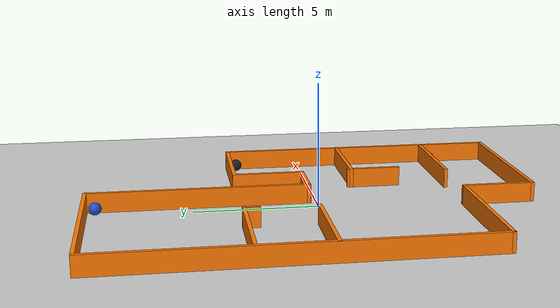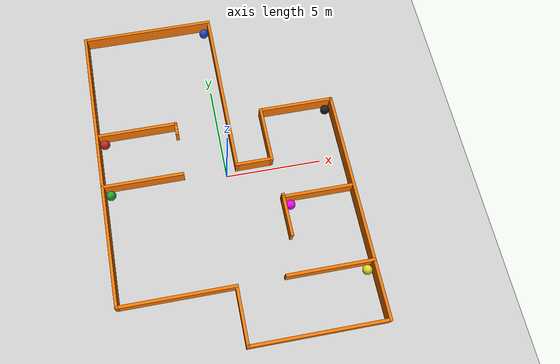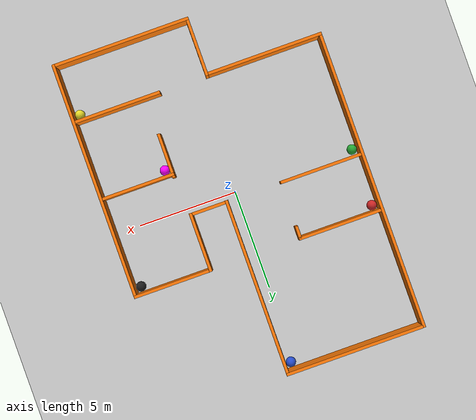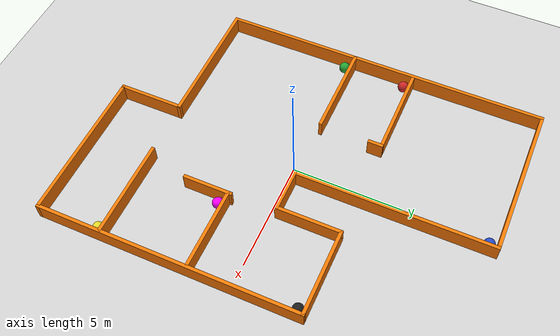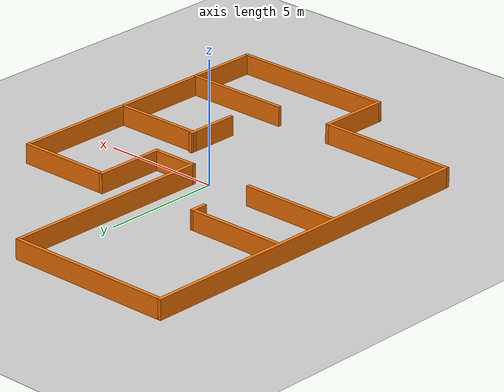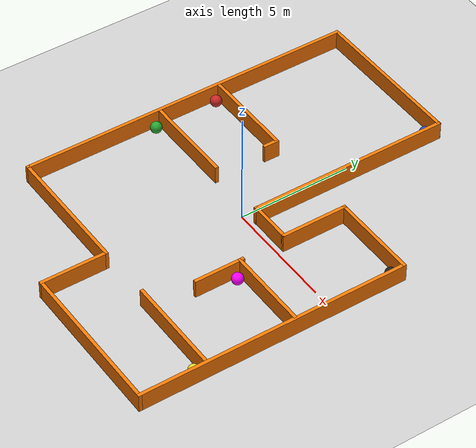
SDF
<sdf version="1.7">
 <world name="default">
  <light name="sun" type="directional">
   <pose>0 0 10 0 -0 0</pose>
   <diffuse>0.8 0.8 0.8 1</diffuse>
   <specular>0.2 0.2 0.2 1</specular>
   <attenuation>
    <range>1000</range>
    <constant>0.9</constant>
    <linear>0.01</linear>
    <quadratic>0.001</quadratic>
   </attenuation>
   <direction>-0.5 0.1 -0.9</direction>
   <spot><inner_angle>0</inner_angle><outer_angle>0</outer_angle><falloff>0</falloff></spot>
  </light>
  <model name="ground_plane">
   <static>1</static>
   <link name="link">
    <collision name="collision">
     <geometry><plane><normal>0 0 1</normal><size>100 100</size></plane></geometry>
     <surface>
      <contact><collide_bitmask>65535</collide_bitmask></contact>
      <friction><ode><mu>100</mu><mu2>50</mu2></ode></friction>
     </surface>
    </collision>
    <visual name="visual">
     <cast_shadows>0</cast_shadows>
     <geometry><plane><normal>0 0 1</normal><size>100 100</size></plane></geometry>
     <material>
      <script><uri>file://media/materials/scripts/gazebo.material</uri><name>Gazebo/Grey</name></script>
     </material>
    </visual>
   </link>
  </model>
  <gravity>0 0 -9.8</gravity>
  <magnetic_field>6e-06 2.3e-05 -4.2e-05</magnetic_field>
  <atmosphere type="adiabatic"/>
  <physics name="default_physics" default="0" type="ode">
   <max_step_size>0.001</max_step_size>
   <real_time_factor>1</real_time_factor>
   <real_time_update_rate>1000</real_time_update_rate>
  </physics>
  <scene><ambient>0.4 0.4 0.4 1</ambient><background>0.7 0.7 0.7 1</background><shadows>1</shadows></scene>
  <spherical_coordinates>
   <surface_model>EARTH_WGS84</surface_model>
   <latitude_deg>0</latitude_deg>
   <longitude_deg>0</longitude_deg>
   <elevation>0</elevation>
   <heading_deg>0</heading_deg>
  </spherical_coordinates>
  <model name="house_1">
   <link name="Wall_43">
    <pose>-2.787 8.425 0 0 -0 0</pose>
    <inertial>
     <mass>1</mass>
     <inertia><ixx>1</ixx><ixy>0</ixy><ixz>0</ixz><iyy>1</iyy><iyz>0</iyz><izz>1</izz></inertia>
    </inertial>
    <visual name="Wall_43_Visual">
     <pose>0 0 0.4 0 -0 0</pose>
     <geometry><box><size>7 0.15 0.8</size></box></geometry>
     <material>
      <script><uri>file://media/materials/scripts/gazebo.material</uri><name>Gazebo/Grey</name></script>
      <ambient>0.996 0.475 0.02 1</ambient>
      <shader type="pixel"><normal_map>__default__</normal_map></shader>
      <diffuse>0.7 0.7 0.7 1</diffuse>
      <specular>0.01 0.01 0.01 1</specular>
      <emissive>0 0 0 1</emissive>
     </material>
     <meta><layer>0</layer></meta>
    </visual>
    <collision name="Wall_43_Collision">
     <pose>0 0 0.4 0 -0 0</pose>
     <geometry><box><size>7 0.15 0.8</size></box></geometry>
     <surface>
      <friction>
       <ode><mu>1</mu><mu2>1</mu2><fdir1>0 0 0</fdir1><slip1>0</slip1><slip2>0</slip2></ode>
       <torsional>
        <coefficient>1</coefficient>
        <patch_radius>0</patch_radius>
        <surface_radius>0</surface_radius>
        <use_patch_radius>1</use_patch_radius>
        <ode><slip>0</slip></ode>
       </torsional>
      </friction>
      <bounce><restitution_coefficient>0</restitution_coefficient><threshold>1e+06</threshold></bounce>
      <contact>
       <collide_without_contact>0</collide_without_contact>
       <collide_without_contact_bitmask>1</collide_without_contact_bitmask>
       <collide_bitmask>1</collide_bitmask>
       <ode>
        <soft_cfm>0</soft_cfm>
        <soft_erp>0.2</soft_erp>
        <kp>1e+13</kp>
        <kd>1</kd>
        <max_vel>0.01</max_vel>
        <min_depth>0</min_depth>
       </ode>
       <bullet>
        <split_impulse>1</split_impulse>
        <split_impulse_penetration_threshold>-0.01</split_impulse_penetration_threshold>
        <soft_cfm>0</soft_cfm>
        <soft_erp>0.2</soft_erp>
        <kp>1e+13</kp>
        <kd>1</kd>
       </bullet>
      </contact>
     </surface>
    </collision>
   </link>
   <link name="Wall_44">
    <pose>0.642 3.99 0 0 0 -1.5708</pose>
    <inertial>
     <mass>1</mass>
     <inertia><ixx>1</ixx><ixy>0</ixy><ixz>0</ixz><iyy>1</iyy><iyz>0</iyz><izz>1</izz></inertia>
    </inertial>
    <visual name="Wall_44_Visual">
     <pose>0 0 0.4 0 -0 0</pose>
     <geometry><box><size>9 0.15 0.8</size></box></geometry>
     <material>
      <script><uri>file://media/materials/scripts/gazebo.material</uri><name>Gazebo/Grey</name></script>
      <ambient>0.996 0.475 0.02 1</ambient>
      <shader type="pixel"><normal_map>__default__</normal_map></shader>
      <diffuse>0.7 0.7 0.7 1</diffuse>
      <specular>0.01 0.01 0.01 1</specular>
      <emissive>0 0 0 1</emissive>
     </material>
     <meta><layer>0</layer></meta>
    </visual>
    <collision name="Wall_44_Collision">
     <pose>0 0 0.4 0 -0 0</pose>
     <geometry><box><size>9 0.15 0.8</size></box></geometry>
     <surface>
      <friction>
       <ode><mu>1</mu><mu2>1</mu2><fdir1>0 0 0</fdir1><slip1>0</slip1><slip2>0</slip2></ode>
       <torsional>
        <coefficient>1</coefficient>
        <patch_radius>0</patch_radius>
        <surface_radius>0</surface_radius>
        <use_patch_radius>1</use_patch_radius>
        <ode><slip>0</slip></ode>
       </torsional>
      </friction>
      <bounce><restitution_coefficient>0</restitution_coefficient><threshold>1e+06</threshold></bounce>
      <contact>
       <collide_without_contact>0</collide_without_contact>
       <collide_without_contact_bitmask>1</collide_without_contact_bitmask>
       <collide_bitmask>1</collide_bitmask>
       <ode>
        <soft_cfm>0</soft_cfm>
        <soft_erp>0.2</soft_erp>
        <kp>1e+13</kp>
        <kd>1</kd>
        <max_vel>0.01</max_vel>
        <min_depth>0</min_depth>
       </ode>
       <bullet>
        <split_impulse>1</split_impulse>
        <split_impulse_penetration_threshold>-0.01</split_impulse_penetration_threshold>
        <soft_cfm>0</soft_cfm>
        <soft_erp>0.2</soft_erp>
        <kp>1e+13</kp>
        <kd>1</kd>
       </bullet>
      </contact>
     </surface>
    </collision>
   </link>
   <link name="Wall_45">
    <pose>1.563 -0.425 0 0 -0 0</pose>
    <inertial>
     <mass>1</mass>
     <inertia><ixx>1</ixx><ixy>0</ixy><ixz>0</ixz><iyy>1</iyy><iyz>0</iyz><izz>1</izz></inertia>
    </inertial>
    <visual name="Wall_45_Visual">
     <pose>0 0 0.4 0 -0 0</pose>
     <geometry><box><size>2 0.15 0.8</size></box></geometry>
     <material>
      <script><uri>file://media/materials/scripts/gazebo.material</uri><name>Gazebo/Grey</name></script>
      <ambient>0.996 0.475 0.02 1</ambient>
      <shader type="pixel"><normal_map>__default__</normal_map></shader>
      <diffuse>0.7 0.7 0.7 1</diffuse>
      <specular>0.01 0.01 0.01 1</specular>
      <emissive>0 0 0 1</emissive>
     </material>
     <meta><layer>0</layer></meta>
    </visual>
    <collision name="Wall_45_Collision">
     <pose>0 0 0.4 0 -0 0</pose>
     <geometry><box><size>2 0.15 0.8</size></box></geometry>
     <surface>
      <friction>
       <ode><mu>1</mu><mu2>1</mu2><fdir1>0 0 0</fdir1><slip1>0</slip1><slip2>0</slip2></ode>
       <torsional>
        <coefficient>1</coefficient>
        <patch_radius>0</patch_radius>
        <surface_radius>0</surface_radius>
        <use_patch_radius>1</use_patch_radius>
        <ode><slip>0</slip></ode>
       </torsional>
      </friction>
      <bounce><restitution_coefficient>0</restitution_coefficient><threshold>1e+06</threshold></bounce>
      <contact>
       <collide_without_contact>0</collide_without_contact>
       <collide_without_contact_bitmask>1</collide_without_contact_bitmask>
       <collide_bitmask>1</collide_bitmask>
       <ode>
        <soft_cfm>0</soft_cfm>
        <soft_erp>0.2</soft_erp>
        <kp>1e+13</kp>
        <kd>1</kd>
        <max_vel>0.01</max_vel>
        <min_depth>0</min_depth>
       </ode>
       <bullet>
        <split_impulse>1</split_impulse>
        <split_impulse_penetration_threshold>-0.01</split_impulse_penetration_threshold>
        <soft_cfm>0</soft_cfm>
        <soft_erp>0.2</soft_erp>
        <kp>1e+13</kp>
        <kd>1</kd>
       </bullet>
      </contact>
     </surface>
    </collision>
   </link>
   <link name="Wall_46">
    <pose>2.488 1 0 0 -0 1.5708</pose>
    <inertial>
     <mass>1</mass>
     <inertia><ixx>1</ixx><ixy>0</ixy><ixz>0</ixz><iyy>1</iyy><iyz>0</iyz><izz>1</izz></inertia>
    </inertial>
    <visual name="Wall_46_Visual">
     <pose>0 0 0.4 0 -0 0</pose>
     <geometry><box><size>3 0.15 0.8</size></box></geometry>
     <material>
      <script><uri>file://media/materials/scripts/gazebo.material</uri><name>Gazebo/Grey</name></script>
      <ambient>0.996 0.475 0.02 1</ambient>
      <shader type="pixel"><normal_map>__default__</normal_map></shader>
      <diffuse>0.7 0.7 0.7 1</diffuse>
      <specular>0.01 0.01 0.01 1</specular>
      <emissive>0 0 0 1</emissive>
     </material>
     <meta><layer>0</layer></meta>
    </visual>
    <collision name="Wall_46_Collision">
     <pose>0 0 0.4 0 -0 0</pose>
     <geometry><box><size>3 0.15 0.8</size></box></geometry>
     <surface>
      <friction>
       <ode><mu>1</mu><mu2>1</mu2><fdir1>0 0 0</fdir1><slip1>0</slip1><slip2>0</slip2></ode>
       <torsional>
        <coefficient>1</coefficient>
        <patch_radius>0</patch_radius>
        <surface_radius>0</surface_radius>
        <use_patch_radius>1</use_patch_radius>
        <ode><slip>0</slip></ode>
       </torsional>
      </friction>
      <bounce><restitution_coefficient>0</restitution_coefficient><threshold>1e+06</threshold></bounce>
      <contact>
       <collide_without_contact>0</collide_without_contact>
       <collide_without_contact_bitmask>1</collide_without_contact_bitmask>
       <collide_bitmask>1</collide_bitmask>
       <ode>
        <soft_cfm>0</soft_cfm>
        <soft_erp>0.2</soft_erp>
        <kp>1e+13</kp>
        <kd>1</kd>
        <max_vel>0.01</max_vel>
        <min_depth>0</min_depth>
       </ode>
       <bullet>
        <split_impulse>1</split_impulse>
        <split_impulse_penetration_threshold>-0.01</split_impulse_penetration_threshold>
        <soft_cfm>0</soft_cfm>
        <soft_erp>0.2</soft_erp>
        <kp>1e+13</kp>
        <kd>1</kd>
       </bullet>
      </contact>
     </surface>
    </collision>
   </link>
   <link name="Wall_47">
    <pose>4.413 2.425 0 0 -0 0</pose>
    <visual name="Wall_47_Visual">
     <pose>0 0 0.4 0 -0 0</pose>
     <geometry><box><size>4 0.15 0.8</size></box></geometry>
     <material>
      <script><uri>file://media/materials/scripts/gazebo.material</uri><name>Gazebo/Grey</name></script>
      <ambient>0.996078 0.47451 0.0196078 1</ambient>
      <shader type="pixel"/>
      <diffuse>0.7 0.7 0.7 1</diffuse>
      <specular>0.01 0.01 0.01 1</specular>
      <emissive>0 0 0 1</emissive>
     </material>
     <meta><layer>0</layer></meta>
    </visual>
    <collision name="Wall_47_Collision">
     <pose>0 0 0.4 0 -0 0</pose>
     <geometry><box><size>4 0.15 0.8</size></box></geometry>
     <surface>
      <friction>
       <ode><mu>1</mu><mu2>1</mu2><fdir1>0 0 0</fdir1><slip1>0</slip1><slip2>0</slip2></ode>
       <torsional>
        <coefficient>1</coefficient>
        <patch_radius>0</patch_radius>
        <surface_radius>0</surface_radius>
        <use_patch_radius>1</use_patch_radius>
        <ode><slip>0</slip></ode>
       </torsional>
      </friction>
      <bounce><restitution_coefficient>0</restitution_coefficient><threshold>1e+06</threshold></bounce>
      <contact>
       <collide_without_contact>0</collide_without_contact>
       <collide_without_contact_bitmask>1</collide_without_contact_bitmask>
       <collide_bitmask>1</collide_bitmask>
       <ode>
        <soft_cfm>0</soft_cfm>
        <soft_erp>0.2</soft_erp>
        <kp>1e+13</kp>
        <kd>1</kd>
        <max_vel>0.01</max_vel>
        <min_depth>0</min_depth>
       </ode>
       <bullet>
        <split_impulse>1</split_impulse>
        <split_impulse_penetration_threshold>-0.01</split_impulse_penetration_threshold>
        <soft_cfm>0</soft_cfm>
        <soft_erp>0.2</soft_erp>
        <kp>1e+13</kp>
        <kd>1</kd>
       </bullet>
      </contact>
     </surface>
    </collision>
   </link>
   <link name="Wall_48">
    <pose>6.338 -3.5 0 0 0 -1.5708</pose>
    <inertial>
     <mass>1</mass>
     <inertia><ixx>1</ixx><ixy>0</ixy><ixz>0</ixz><iyy>1</iyy><iyz>0</iyz><izz>1</izz></inertia>
    </inertial>
    <visual name="Wall_48_Visual">
     <pose>0 0 0.4 0 -0 0</pose>
     <geometry><box><size>12 0.15 0.8</size></box></geometry>
     <material>
      <script><uri>file://media/materials/scripts/gazebo.material</uri><name>Gazebo/Grey</name></script>
      <ambient>0.996 0.475 0.02 1</ambient>
      <shader type="pixel"><normal_map>__default__</normal_map></shader>
      <diffuse>0.7 0.7 0.7 1</diffuse>
      <specular>0.01 0.01 0.01 1</specular>
      <emissive>0 0 0 1</emissive>
     </material>
     <meta><layer>0</layer></meta>
    </visual>
    <collision name="Wall_48_Collision">
     <pose>0 0 0.4 0 -0 0</pose>
     <geometry><box><size>12 0.15 0.8</size></box></geometry>
     <surface>
      <friction>
       <ode><mu>1</mu><mu2>1</mu2><fdir1>0 0 0</fdir1><slip1>0</slip1><slip2>0</slip2></ode>
       <torsional>
        <coefficient>1</coefficient>
        <patch_radius>0</patch_radius>
        <surface_radius>0</surface_radius>
        <use_patch_radius>1</use_patch_radius>
        <ode><slip>0</slip></ode>
       </torsional>
      </friction>
      <bounce><restitution_coefficient>0</restitution_coefficient><threshold>1e+06</threshold></bounce>
      <contact>
       <collide_without_contact>0</collide_without_contact>
       <collide_without_contact_bitmask>1</collide_without_contact_bitmask>
       <collide_bitmask>1</collide_bitmask>
       <ode>
        <soft_cfm>0</soft_cfm>
        <soft_erp>0.2</soft_erp>
        <kp>1e+13</kp>
        <kd>1</kd>
        <max_vel>0.01</max_vel>
        <min_depth>0</min_depth>
       </ode>
       <bullet>
        <split_impulse>1</split_impulse>
        <split_impulse_penetration_threshold>-0.01</split_impulse_penetration_threshold>
        <soft_cfm>0</soft_cfm>
        <soft_erp>0.2</soft_erp>
        <kp>1e+13</kp>
        <kd>1</kd>
       </bullet>
      </contact>
     </surface>
    </collision>
   </link>
   <link name="Wall_49">
    <pose>2.913 -9.425 0 0 -0 3.14159</pose>
    <inertial>
     <mass>1</mass>
     <inertia><ixx>1</ixx><ixy>0</ixy><ixz>0</ixz><iyy>1</iyy><iyz>0</iyz><izz>1</izz></inertia>
    </inertial>
    <visual name="Wall_49_Visual">
     <pose>0 0 0.4 0 -0 0</pose>
     <geometry><box><size>7 0.15 0.8</size></box></geometry>
     <material>
      <script><uri>file://media/materials/scripts/gazebo.material</uri><name>Gazebo/Grey</name></script>
      <ambient>0.996 0.475 0.02 1</ambient>
      <shader type="pixel"><normal_map>__default__</normal_map></shader>
      <diffuse>0.7 0.7 0.7 1</diffuse>
      <specular>0.01 0.01 0.01 1</specular>
      <emissive>0 0 0 1</emissive>
     </material>
     <meta><layer>0</layer></meta>
    </visual>
    <collision name="Wall_49_Collision">
     <pose>0 0 0.4 0 -0 0</pose>
     <geometry><box><size>7 0.15 0.8</size></box></geometry>
     <surface>
      <friction>
       <ode><mu>1</mu><mu2>1</mu2><fdir1>0 0 0</fdir1><slip1>0</slip1><slip2>0</slip2></ode>
       <torsional>
        <coefficient>1</coefficient>
        <patch_radius>0</patch_radius>
        <surface_radius>0</surface_radius>
        <use_patch_radius>1</use_patch_radius>
        <ode><slip>0</slip></ode>
       </torsional>
      </friction>
      <bounce><restitution_coefficient>0</restitution_coefficient><threshold>1e+06</threshold></bounce>
      <contact>
       <collide_without_contact>0</collide_without_contact>
       <collide_without_contact_bitmask>1</collide_without_contact_bitmask>
       <collide_bitmask>1</collide_bitmask>
       <ode>
        <soft_cfm>0</soft_cfm>
        <soft_erp>0.2</soft_erp>
        <kp>1e+13</kp>
        <kd>1</kd>
        <max_vel>0.01</max_vel>
        <min_depth>0</min_depth>
       </ode>
       <bullet>
        <split_impulse>1</split_impulse>
        <split_impulse_penetration_threshold>-0.01</split_impulse_penetration_threshold>
        <soft_cfm>0</soft_cfm>
        <soft_erp>0.2</soft_erp>
        <kp>1e+13</kp>
        <kd>1</kd>
       </bullet>
      </contact>
     </surface>
    </collision>
   </link>
   <link name="Wall_50">
    <pose>-0.512 -8 0 0 -0 1.5708</pose>
    <inertial>
     <mass>1</mass>
     <inertia><ixx>1</ixx><ixy>0</ixy><ixz>0</ixz><iyy>1</iyy><iyz>0</iyz><izz>1</izz></inertia>
    </inertial>
    <visual name="Wall_50_Visual">
     <pose>0 0 0.4 0 -0 0</pose>
     <geometry><box><size>3 0.15 0.8</size></box></geometry>
     <material>
      <script><uri>file://media/materials/scripts/gazebo.material</uri><name>Gazebo/Grey</name></script>
      <ambient>0.996 0.475 0.02 1</ambient>
      <shader type="pixel"><normal_map>__default__</normal_map></shader>
      <diffuse>0.7 0.7 0.7 1</diffuse>
      <specular>0.01 0.01 0.01 1</specular>
      <emissive>0 0 0 1</emissive>
     </material>
     <meta><layer>0</layer></meta>
    </visual>
    <collision name="Wall_50_Collision">
     <pose>0 0 0.4 0 -0 0</pose>
     <geometry><box><size>3 0.15 0.8</size></box></geometry>
     <surface>
      <friction>
       <ode><mu>1</mu><mu2>1</mu2><fdir1>0 0 0</fdir1><slip1>0</slip1><slip2>0</slip2></ode>
       <torsional>
        <coefficient>1</coefficient>
        <patch_radius>0</patch_radius>
        <surface_radius>0</surface_radius>
        <use_patch_radius>1</use_patch_radius>
        <ode><slip>0</slip></ode>
       </torsional>
      </friction>
      <bounce><restitution_coefficient>0</restitution_coefficient><threshold>1e+06</threshold></bounce>
      <contact>
       <collide_without_contact>0</collide_without_contact>
       <collide_without_contact_bitmask>1</collide_without_contact_bitmask>
       <collide_bitmask>1</collide_bitmask>
       <ode>
        <soft_cfm>0</soft_cfm>
        <soft_erp>0.2</soft_erp>
        <kp>1e+13</kp>
        <kd>1</kd>
        <max_vel>0.01</max_vel>
        <min_depth>0</min_depth>
       </ode>
       <bullet>
        <split_impulse>1</split_impulse>
        <split_impulse_penetration_threshold>-0.01</split_impulse_penetration_threshold>
        <soft_cfm>0</soft_cfm>
        <soft_erp>0.2</soft_erp>
        <kp>1e+13</kp>
        <kd>1</kd>
       </bullet>
      </contact>
     </surface>
    </collision>
   </link>
   <link name="Wall_51">
    <pose>-3.425 -6.575 0 0 -0 3.14159</pose>
    <visual name="Wall_51_Visual">
     <pose>0 0 0.4 0 -0 0</pose>
     <geometry><box><size>5.976 0.15 0.8</size></box></geometry>
     <material>
      <script><uri>file://media/materials/scripts/gazebo.material</uri><name>Gazebo/Grey</name></script>
      <ambient>0.996078 0.47451 0.0196078 1</ambient>
      <shader type="pixel"/>
      <diffuse>0.7 0.7 0.7 1</diffuse>
      <specular>0.01 0.01 0.01 1</specular>
      <emissive>0 0 0 1</emissive>
     </material>
     <meta><layer>0</layer></meta>
    </visual>
    <collision name="Wall_51_Collision">
     <pose>0 0 0.4 0 -0 0</pose>
     <geometry><box><size>5.976 0.15 0.8</size></box></geometry>
     <surface>
      <friction>
       <ode><mu>1</mu><mu2>1</mu2><fdir1>0 0 0</fdir1><slip1>0</slip1><slip2>0</slip2></ode>
       <torsional>
        <coefficient>1</coefficient>
        <patch_radius>0</patch_radius>
        <surface_radius>0</surface_radius>
        <use_patch_radius>1</use_patch_radius>
        <ode><slip>0</slip></ode>
       </torsional>
      </friction>
      <bounce><restitution_coefficient>0</restitution_coefficient><threshold>1e+06</threshold></bounce>
      <contact>
       <collide_without_contact>0</collide_without_contact>
       <collide_without_contact_bitmask>1</collide_without_contact_bitmask>
       <collide_bitmask>1</collide_bitmask>
       <ode>
        <soft_cfm>0</soft_cfm>
        <soft_erp>0.2</soft_erp>
        <kp>1e+13</kp>
        <kd>1</kd>
        <max_vel>0.01</max_vel>
        <min_depth>0</min_depth>
       </ode>
       <bullet>
        <split_impulse>1</split_impulse>
        <split_impulse_penetration_threshold>-0.01</split_impulse_penetration_threshold>
        <soft_cfm>0</soft_cfm>
        <soft_erp>0.2</soft_erp>
        <kp>1e+13</kp>
        <kd>1</kd>
       </bullet>
      </contact>
     </surface>
    </collision>
   </link>
   <link name="Wall_52">
    <pose>-6.338 0.9215 0 0 -0 1.5708</pose>
    <visual name="Wall_52_Visual">
     <pose>0 0 0.4 0 -0 0</pose>
     <geometry><box><size>15.1433 0.15 0.8</size></box></geometry>
     <material>
      <script><uri>file://media/materials/scripts/gazebo.material</uri><name>Gazebo/Grey</name></script>
      <ambient>0.996078 0.47451 0.0196078 1</ambient>
      <shader type="pixel"/>
      <diffuse>0.7 0.7 0.7 1</diffuse>
      <specular>0.01 0.01 0.01 1</specular>
      <emissive>0 0 0 1</emissive>
     </material>
     <meta><layer>0</layer></meta>
    </visual>
    <collision name="Wall_52_Collision">
     <pose>0 0 0.4 0 -0 0</pose>
     <geometry><box><size>15.1433 0.15 0.8</size></box></geometry>
     <surface>
      <friction>
       <ode><mu>1</mu><mu2>1</mu2><fdir1>0 0 0</fdir1><slip1>0</slip1><slip2>0</slip2></ode>
       <torsional>
        <coefficient>1</coefficient>
        <patch_radius>0</patch_radius>
        <surface_radius>0</surface_radius>
        <use_patch_radius>1</use_patch_radius>
        <ode><slip>0</slip></ode>
       </torsional>
      </friction>
      <bounce><restitution_coefficient>0</restitution_coefficient><threshold>1e+06</threshold></bounce>
      <contact>
       <collide_without_contact>0</collide_without_contact>
       <collide_without_contact_bitmask>1</collide_without_contact_bitmask>
       <collide_bitmask>1</collide_bitmask>
       <ode>
        <soft_cfm>0</soft_cfm>
        <soft_erp>0.2</soft_erp>
        <kp>1e+13</kp>
        <kd>1</kd>
        <max_vel>0.01</max_vel>
        <min_depth>0</min_depth>
       </ode>
       <bullet>
        <split_impulse>1</split_impulse>
        <split_impulse_penetration_threshold>-0.01</split_impulse_penetration_threshold>
        <soft_cfm>0</soft_cfm>
        <soft_erp>0.2</soft_erp>
        <kp>1e+13</kp>
        <kd>1</kd>
       </bullet>
      </contact>
     </surface>
    </collision>
   </link>
   <link name="Wall_54">
    <pose>-4.182 2.435 0 0 -0 0</pose>
    <visual name="Wall_54_Visual">
     <pose>0 0 0.4 0 -0 0</pose>
     <geometry><box><size>4.25 0.15 0.8</size></box></geometry>
     <material>
      <script><uri>file://media/materials/scripts/gazebo.material</uri><name>Gazebo/Grey</name></script>
      <ambient>0.996078 0.47451 0.0196078 1</ambient>
      <shader type="pixel"/>
      <diffuse>0.7 0.7 0.7 1</diffuse>
      <specular>0.01 0.01 0.01 1</specular>
      <emissive>0 0 0 1</emissive>
     </material>
     <meta><layer>0</layer></meta>
    </visual>
    <collision name="Wall_54_Collision">
     <pose>0 0 0.4 0 -0 0</pose>
     <geometry><box><size>4.25 0.15 0.8</size></box></geometry>
     <surface>
      <friction>
       <ode><mu>1</mu><mu2>1</mu2><fdir1>0 0 0</fdir1><slip1>0</slip1><slip2>0</slip2></ode>
       <torsional>
        <coefficient>1</coefficient>
        <patch_radius>0</patch_radius>
        <surface_radius>0</surface_radius>
        <use_patch_radius>1</use_patch_radius>
        <ode><slip>0</slip></ode>
       </torsional>
      </friction>
      <bounce><restitution_coefficient>0</restitution_coefficient><threshold>1e+06</threshold></bounce>
      <contact>
       <collide_without_contact>0</collide_without_contact>
       <collide_without_contact_bitmask>1</collide_without_contact_bitmask>
       <collide_bitmask>1</collide_bitmask>
       <ode>
        <soft_cfm>0</soft_cfm>
        <soft_erp>0.2</soft_erp>
        <kp>1e+13</kp>
        <kd>1</kd>
        <max_vel>0.01</max_vel>
        <min_depth>0</min_depth>
       </ode>
       <bullet>
        <split_impulse>1</split_impulse>
        <split_impulse_penetration_threshold>-0.01</split_impulse_penetration_threshold>
        <soft_cfm>0</soft_cfm>
        <soft_erp>0.2</soft_erp>
        <kp>1e+13</kp>
        <kd>1</kd>
       </bullet>
      </contact>
     </surface>
    </collision>
   </link>
   <link name="Wall_56">
    <pose>-4.252 -0.433 0 0 -0 0</pose>
    <visual name="Wall_56_Visual">
     <pose>0 0 0.4 0 -0 0</pose>
     <geometry><box><size>4.25 0.15 0.8</size></box></geometry>
     <material>
      <script><uri>file://media/materials/scripts/gazebo.material</uri><name>Gazebo/Grey</name></script>
      <ambient>0.996078 0.47451 0.0196078 1</ambient>
      <shader type="pixel"/>
      <diffuse>0.7 0.7 0.7 1</diffuse>
      <specular>0.01 0.01 0.01 1</specular>
      <emissive>0 0 0 1</emissive>
     </material>
     <meta><layer>0</layer></meta>
    </visual>
    <collision name="Wall_56_Collision">
     <pose>0 0 0.4 0 -0 0</pose>
     <geometry><box><size>4.25 0.15 0.8</size></box></geometry>
     <surface>
      <friction>
       <ode><mu>1</mu><mu2>1</mu2><fdir1>0 0 0</fdir1><slip1>0</slip1><slip2>0</slip2></ode>
       <torsional>
        <coefficient>1</coefficient>
        <patch_radius>0</patch_radius>
        <surface_radius>0</surface_radius>
        <use_patch_radius>1</use_patch_radius>
        <ode><slip>0</slip></ode>
       </torsional>
      </friction>
      <bounce><restitution_coefficient>0</restitution_coefficient><threshold>1e+06</threshold></bounce>
      <contact>
       <collide_without_contact>0</collide_without_contact>
       <collide_without_contact_bitmask>1</collide_without_contact_bitmask>
       <collide_bitmask>1</collide_bitmask>
       <ode>
        <soft_cfm>0</soft_cfm>
        <soft_erp>0.2</soft_erp>
        <kp>1e+13</kp>
        <kd>1</kd>
        <max_vel>0.01</max_vel>
        <min_depth>0</min_depth>
       </ode>
       <bullet>
        <split_impulse>1</split_impulse>
        <split_impulse_penetration_threshold>-0.01</split_impulse_penetration_threshold>
        <soft_cfm>0</soft_cfm>
        <soft_erp>0.2</soft_erp>
        <kp>1e+13</kp>
        <kd>1</kd>
       </bullet>
      </contact>
     </surface>
    </collision>
   </link>
   <link name="Wall_58">
    <pose>-2.132 2.16 0 0 0 -1.5808</pose>
    <inertial>
     <mass>1</mass>
     <inertia><ixx>1</ixx><ixy>0</ixy><ixz>0</ixz><iyy>1</iyy><iyz>0</iyz><izz>1</izz></inertia>
    </inertial>
    <visual name="Wall_58_Visual">
     <pose>0 0 0.4 0 -0 0</pose>
     <geometry><box><size>0.7 0.15 0.8</size></box></geometry>
     <material>
      <script><uri>file://media/materials/scripts/gazebo.material</uri><name>Gazebo/Grey</name></script>
      <ambient>0.996 0.475 0.02 1</ambient>
      <shader type="pixel"><normal_map>__default__</normal_map></shader>
      <diffuse>0.7 0.7 0.7 1</diffuse>
      <specular>0.01 0.01 0.01 1</specular>
      <emissive>0 0 0 1</emissive>
     </material>
     <meta><layer>0</layer></meta>
    </visual>
    <collision name="Wall_58_Collision">
     <pose>0 0 0.4 0 -0 0</pose>
     <geometry><box><size>0.7 0.15 0.8</size></box></geometry>
     <surface>
      <friction>
       <ode><mu>1</mu><mu2>1</mu2><fdir1>0 0 0</fdir1><slip1>0</slip1><slip2>0</slip2></ode>
       <torsional>
        <coefficient>1</coefficient>
        <patch_radius>0</patch_radius>
        <surface_radius>0</surface_radius>
        <use_patch_radius>1</use_patch_radius>
        <ode><slip>0</slip></ode>
       </torsional>
      </friction>
      <bounce><restitution_coefficient>0</restitution_coefficient><threshold>1e+06</threshold></bounce>
      <contact>
       <collide_without_contact>0</collide_without_contact>
       <collide_without_contact_bitmask>1</collide_without_contact_bitmask>
       <collide_bitmask>1</collide_bitmask>
       <ode>
        <soft_cfm>0</soft_cfm>
        <soft_erp>0.2</soft_erp>
        <kp>1e+13</kp>
        <kd>1</kd>
        <max_vel>0.01</max_vel>
        <min_depth>0</min_depth>
       </ode>
       <bullet>
        <split_impulse>1</split_impulse>
        <split_impulse_penetration_threshold>-0.01</split_impulse_penetration_threshold>
        <soft_cfm>0</soft_cfm>
        <soft_erp>0.2</soft_erp>
        <kp>1e+13</kp>
        <kd>1</kd>
       </bullet>
      </contact>
     </surface>
    </collision>
   </link>
   <link name="Wall_60">
    <pose>4.454 -2.562 0 0 -0 3.14159</pose>
    <inertial>
     <mass>1</mass>
     <inertia><ixx>1</ixx><ixy>0</ixy><ixz>0</ixz><iyy>1</iyy><iyz>0</iyz><izz>1</izz></inertia>
    </inertial>
    <visual name="Wall_60_Visual">
     <pose>0 0 0.4 0 -0 0</pose>
     <geometry><box><size>3.75 0.15 0.8</size></box></geometry>
     <material>
      <script><uri>file://media/materials/scripts/gazebo.material</uri><name>Gazebo/Grey</name></script>
      <ambient>0.996 0.475 0.02 1</ambient>
      <shader type="pixel"><normal_map>__default__</normal_map></shader>
      <diffuse>0.7 0.7 0.7 1</diffuse>
      <specular>0.01 0.01 0.01 1</specular>
      <emissive>0 0 0 1</emissive>
     </material>
     <meta><layer>0</layer></meta>
    </visual>
    <collision name="Wall_60_Collision">
     <pose>0 0 0.4 0 -0 0</pose>
     <geometry><box><size>3.75 0.15 0.8</size></box></geometry>
     <surface>
      <friction>
       <ode><mu>1</mu><mu2>1</mu2><fdir1>0 0 0</fdir1><slip1>0</slip1><slip2>0</slip2></ode>
       <torsional>
        <coefficient>1</coefficient>
        <patch_radius>0</patch_radius>
        <surface_radius>0</surface_radius>
        <use_patch_radius>1</use_patch_radius>
        <ode><slip>0</slip></ode>
       </torsional>
      </friction>
      <bounce><restitution_coefficient>0</restitution_coefficient><threshold>1e+06</threshold></bounce>
      <contact>
       <collide_without_contact>0</collide_without_contact>
       <collide_without_contact_bitmask>1</collide_without_contact_bitmask>
       <collide_bitmask>1</collide_bitmask>
       <ode>
        <soft_cfm>0</soft_cfm>
        <soft_erp>0.2</soft_erp>
        <kp>1e+13</kp>
        <kd>1</kd>
        <max_vel>0.01</max_vel>
        <min_depth>0</min_depth>
       </ode>
       <bullet>
        <split_impulse>1</split_impulse>
        <split_impulse_penetration_threshold>-0.01</split_impulse_penetration_threshold>
        <soft_cfm>0</soft_cfm>
        <soft_erp>0.2</soft_erp>
        <kp>1e+13</kp>
        <kd>1</kd>
       </bullet>
      </contact>
     </surface>
    </collision>
   </link>
   <link name="Wall_61">
    <pose>2.654 -3.512 0 0 0 -1.5708</pose>
    <inertial>
     <mass>1</mass>
     <inertia><ixx>1</ixx><ixy>0</ixy><ixz>0</ixz><iyy>1</iyy><iyz>0</iyz><izz>1</izz></inertia>
    </inertial>
    <visual name="Wall_61_Visual">
     <pose>0 0 0.4 0 -0 0</pose>
     <geometry><box><size>2.25 0.15 0.8</size></box></geometry>
     <material>
      <script><uri>file://media/materials/scripts/gazebo.material</uri><name>Gazebo/Grey</name></script>
      <ambient>0.996 0.475 0.02 1</ambient>
      <shader type="pixel"><normal_map>__default__</normal_map></shader>
      <diffuse>0.7 0.7 0.7 1</diffuse>
      <specular>0.01 0.01 0.01 1</specular>
      <emissive>0 0 0 1</emissive>
     </material>
     <meta><layer>0</layer></meta>
    </visual>
    <collision name="Wall_61_Collision">
     <pose>0 0 0.4 0 -0 0</pose>
     <geometry><box><size>2.25 0.15 0.8</size></box></geometry>
     <surface>
      <friction>
       <ode><mu>1</mu><mu2>1</mu2><fdir1>0 0 0</fdir1><slip1>0</slip1><slip2>0</slip2></ode>
       <torsional>
        <coefficient>1</coefficient>
        <patch_radius>0</patch_radius>
        <surface_radius>0</surface_radius>
        <use_patch_radius>1</use_patch_radius>
        <ode><slip>0</slip></ode>
       </torsional>
      </friction>
      <bounce><restitution_coefficient>0</restitution_coefficient><threshold>1e+06</threshold></bounce>
      <contact>
       <collide_without_contact>0</collide_without_contact>
       <collide_without_contact_bitmask>1</collide_without_contact_bitmask>
       <collide_bitmask>1</collide_bitmask>
       <ode>
        <soft_cfm>0</soft_cfm>
        <soft_erp>0.2</soft_erp>
        <kp>1e+13</kp>
        <kd>1</kd>
        <max_vel>0.01</max_vel>
        <min_depth>0</min_depth>
       </ode>
       <bullet>
        <split_impulse>1</split_impulse>
        <split_impulse_penetration_threshold>-0.01</split_impulse_penetration_threshold>
        <soft_cfm>0</soft_cfm>
        <soft_erp>0.2</soft_erp>
        <kp>1e+13</kp>
        <kd>1</kd>
       </bullet>
      </contact>
     </surface>
    </collision>
   </link>
   <link name="Wall_63">
    <pose>4.157 -6.517 0 0 -0 0</pose>
    <inertial>
     <mass>1</mass>
     <inertia><ixx>1</ixx><ixy>0</ixy><ixz>0</ixz><iyy>1</iyy><iyz>0</iyz><izz>1</izz></inertia>
    </inertial>
    <visual name="Wall_63_Visual">
     <pose>0 0 0.4 0 -0 0</pose>
     <geometry><box><size>4.5 0.15 0.8</size></box></geometry>
     <material>
      <script><uri>file://media/materials/scripts/gazebo.material</uri><name>Gazebo/Grey</name></script>
      <ambient>0.996 0.475 0.02 1</ambient>
      <shader type="pixel"><normal_map>__default__</normal_map></shader>
      <diffuse>0.7 0.7 0.7 1</diffuse>
      <specular>0.01 0.01 0.01 1</specular>
      <emissive>0 0 0 1</emissive>
     </material>
     <meta><layer>0</layer></meta>
    </visual>
    <collision name="Wall_63_Collision">
     <pose>0 0 0.4 0 -0 0</pose>
     <geometry><box><size>4.5 0.15 0.8</size></box></geometry>
     <surface>
      <friction>
       <ode><mu>1</mu><mu2>1</mu2><fdir1>0 0 0</fdir1><slip1>0</slip1><slip2>0</slip2></ode>
       <torsional>
        <coefficient>1</coefficient>
        <patch_radius>0</patch_radius>
        <surface_radius>0</surface_radius>
        <use_patch_radius>1</use_patch_radius>
        <ode><slip>0</slip></ode>
       </torsional>
      </friction>
      <bounce><restitution_coefficient>0</restitution_coefficient><threshold>1e+06</threshold></bounce>
      <contact>
       <collide_without_contact>0</collide_without_contact>
       <collide_without_contact_bitmask>1</collide_without_contact_bitmask>
       <collide_bitmask>1</collide_bitmask>
       <ode>
        <soft_cfm>0</soft_cfm>
        <soft_erp>0.2</soft_erp>
        <kp>1e+13</kp>
        <kd>1</kd>
        <max_vel>0.01</max_vel>
        <min_depth>0</min_depth>
       </ode>
       <bullet>
        <split_impulse>1</split_impulse>
        <split_impulse_penetration_threshold>-0.01</split_impulse_penetration_threshold>
        <soft_cfm>0</soft_cfm>
        <soft_erp>0.2</soft_erp>
        <kp>1e+13</kp>
        <kd>1</kd>
       </bullet>
      </contact>
     </surface>
    </collision>
   </link>
   <static>1</static>
   <pose>-0.07851 0.73391 0 0 -0 0</pose>
  </model>
  <model name="unit_sphere">
   <pose>-6.08552 -0.061948 0.25 -1e-06 0.023982 -0</pose>
   <link name="link">
    <inertial>
     <mass>1</mass>
     <inertia><ixx>0.1</ixx><ixy>0</ixy><ixz>0</ixz><iyy>0.1</iyy><iyz>0</iyz><izz>0.1</izz></inertia>
    </inertial>
    <collision name="collision"><geometry><sphere><radius>0.25</radius></sphere></geometry></collision>
    <visual name="visual">
     <geometry><sphere><radius>0.25</radius></sphere></geometry>
     <material>
      <script><name>Gazebo/Green</name><uri>file://media/materials/scripts/gazebo.material</uri></script>
     </material>
    </visual>
   </link>
  </model>
  <model name="unit_sphere_0">
   <pose>-6.0915 2.84391 0.25 0.067246 -0.028553 0.010859</pose>
   <link name="link">
    <inertial>
     <mass>1</mass>
     <inertia><ixx>0.1</ixx><ixy>0</ixy><ixz>0</ixz><iyy>0.1</iyy><iyz>0</iyz><izz>0.1</izz></inertia>
    </inertial>
    <collision name="collision"><geometry><sphere><radius>0.25</radius></sphere></geometry></collision>
    <visual name="visual">
     <geometry><sphere><radius>0.25</radius></sphere></geometry>
     <material>
      <script><name>Gazebo/Red</name><uri>file://media/materials/scripts/gazebo.material</uri></script>
     </material>
    </visual>
   </link>
  </model>
  <model name="unit_sphere_1">
   <pose>0.233241 8.76653 0.25 -1e-06 -0.044129 0</pose>
   <link name="link">
    <inertial>
     <mass>1</mass>
     <inertia><ixx>0.1</ixx><ixy>0</ixy><ixz>0</ixz><iyy>0.1</iyy><iyz>0</iyz><izz>0.1</izz></inertia>
    </inertial>
    <collision name="collision"><geometry><sphere><radius>0.25</radius></sphere></geometry></collision>
    <visual name="visual">
     <geometry><sphere><radius>0.25</radius></sphere></geometry>
     <material>
      <script><name>Gazebo/Blue</name><uri>file://media/materials/scripts/gazebo.material</uri></script>
     </material>
    </visual>
   </link>
  </model>
  <model name="unit_sphere_2">
   <pose>5.92931 -6.12514 0.25 0.023271 -0.020718 -0</pose>
   <link name="link">
    <inertial>
     <mass>1</mass>
     <inertia><ixx>0.1</ixx><ixy>0</ixy><ixz>0</ixz><iyy>0.1</iyy><iyz>0</iyz><izz>0.1</izz></inertia>
    </inertial>
    <collision name="collision"><geometry><sphere><radius>0.25</radius></sphere></geometry></collision>
    <visual name="visual">
     <geometry><sphere><radius>0.25</radius></sphere></geometry>
     <material>
      <script><name>Gazebo/Yellow</name><uri>file://media/materials/scripts/gazebo.material</uri></script>
     </material>
    </visual>
   </link>
  </model>
  <model name="unit_sphere_3">
   <pose>2.91346 -2.1687 0.25 0.05077 0.056174 0.076678</pose>
   <link name="link">
    <inertial>
     <mass>1</mass>
     <inertia><ixx>0.1</ixx><ixy>0</ixy><ixz>0</ixz><iyy>0.1</iyy><iyz>0</iyz><izz>0.1</izz></inertia>
    </inertial>
    <collision name="collision"><geometry><sphere><radius>0.25</radius></sphere></geometry></collision>
    <visual name="visual">
     <geometry><sphere><radius>0.25</radius></sphere></geometry>
     <material>
      <ambient>1 0 1 1</ambient>
      <diffuse>1 0 1 1</diffuse>
      <specular>0.508273 0.508273 0.508273 1</specular>
      <emissive>0 0 0 0</emissive>
     </material>
    </visual>
   </link>
  </model>
  <model name="unit_sphere_4">
   <pose>5.92413 2.80994 0.25 -1e-06 0.023813 0</pose>
   <link name="link">
    <inertial>
     <mass>1</mass>
     <inertia><ixx>0.1</ixx><ixy>0</ixy><ixz>0</ixz><iyy>0.1</iyy><iyz>0</iyz><izz>0.1</izz></inertia>
    </inertial>
    <collision name="collision"><geometry><sphere><radius>0.25</radius></sphere></geometry></collision>
    <visual name="visual">
     <geometry><sphere><radius>0.25</radius></sphere></geometry>
     <material>
      <script><name>Gazebo/Black</name><uri>file://media/materials/scripts/gazebo.material</uri></script>
     </material>
    </visual>
   </link>
  </model>
 </world>
</sdf>
